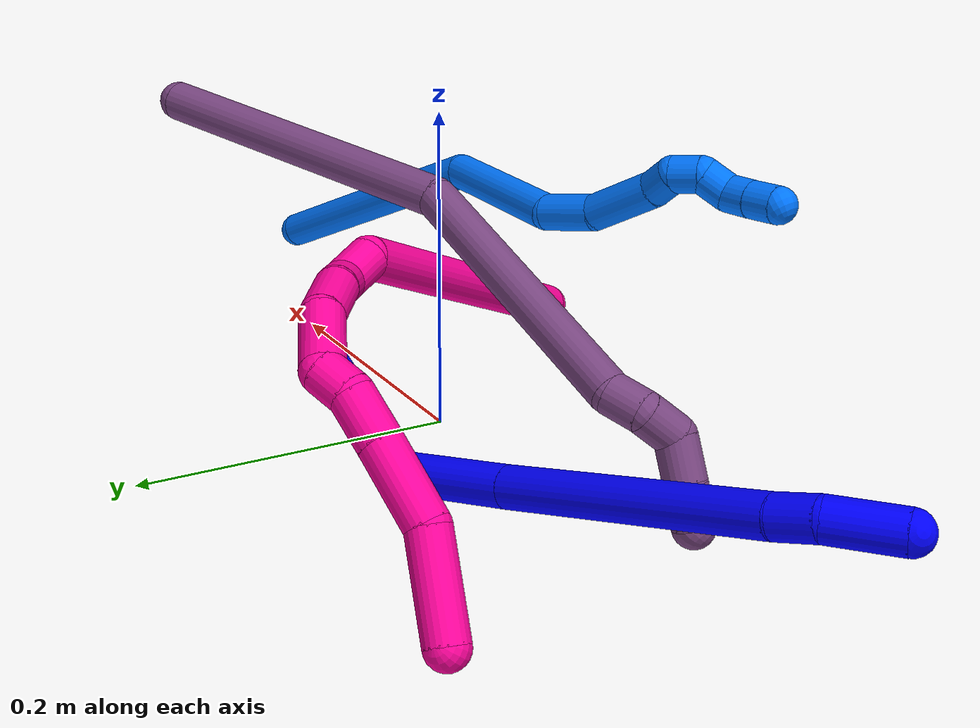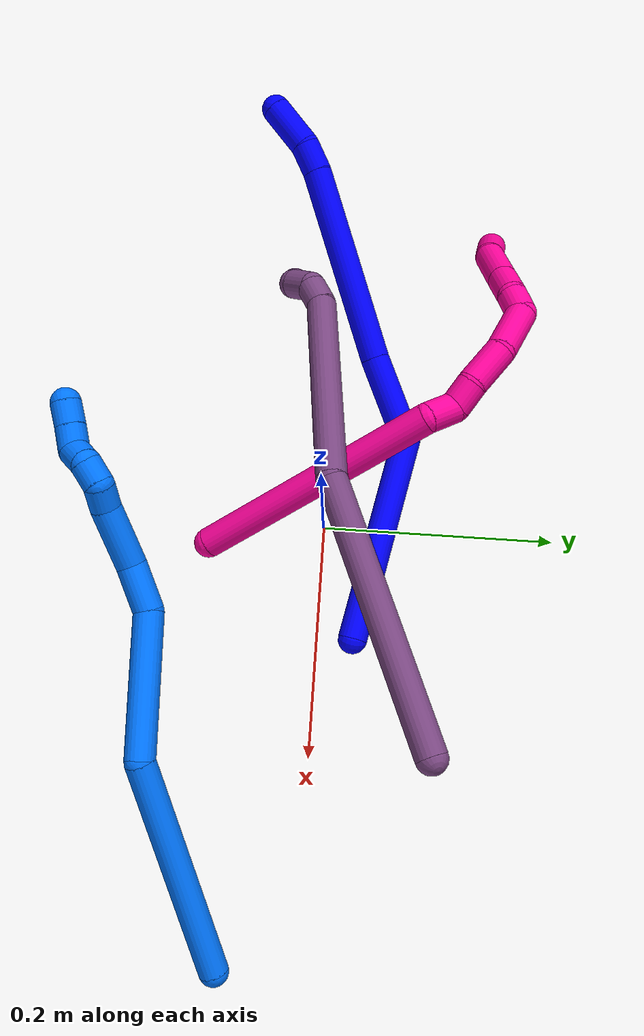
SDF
<sdf version="1.7">
 <world name="default">
  <model name="photoneo_s_sensor">
   <static>1</static>
   <pose>0 0 2 1.57079 1.57079 3.14159</pose>
   <link name="link">
    <inertial><mass>0.1</mass></inertial>
    <sensor name="sensor" type="depth">
     <update_rate>30</update_rate>
     <camera>
      <horizontal_fov>1.22</horizontal_fov>
      <image><width>1920</width><height>1200</height><format>B8G8R8</format></image>
      <clip><near>0.1</near><far>4</far></clip>
      <depth_camera><output>points</output></depth_camera>
     </camera>
     <plugin name="camera_plugin" filename="libgazebo_ros_depth_camera.so">
      <baseline>0.2</baseline>
      <alwaysOn>1</alwaysOn>
      <updateRate>0.0</updateRate>
      <cameraName>camera_ir</cameraName>
      <imageTopicName>/camera/color/image_raw</imageTopicName>
      <cameraInfoTopicName>/camera/color/camera_info</cameraInfoTopicName>
      <depthImageTopicName>/camera/depth/image_raw</depthImageTopicName>
      <depthImageCameraInfoTopicName>/camera/depth/camera_info</depthImageCameraInfoTopicName>
      <pointCloudTopicName>/camera/depth/points</pointCloudTopicName>
      <frameName>fr_optical</frameName>
      <pointCloudCutoff>0.1</pointCloudCutoff>
      <pointCloudCutoffMax>2.0</pointCloudCutoffMax>
      <distortionK1>0</distortionK1>
      <distortionK2>0</distortionK2>
      <distortionK3>0</distortionK3>
      <distortionT1>0</distortionT1>
      <distortionT2>0</distortionT2>
      <CxPrime>0</CxPrime>
      <Cx>0</Cx>
      <Cy>0</Cy>
      <focalLength>0</focalLength>
      <hackBaseline>0</hackBaseline>
     </plugin>
    </sensor>
   </link>
  </model>
  <model name="bin">
   <static>1</static>
   <link name="bottom">
    <collision name="collision-bottom">
     <pose>0 0 -0.01 0 -0 0</pose>
     <geometry><box><size>0.8 0.6 0.02</size></box></geometry>
     <surface>
      <friction><ode><mu>100</mu><mu2>100</mu2></ode></friction>
      <contact><collide_bitmask>65535</collide_bitmask></contact>
     </surface>
    </collision>
   </link>
   <link name="west_wall">
    <collision name="collision-west_wall">
     <pose>-0.41 0 0.1 0 -0 0</pose>
     <geometry><box><size>0.02 0.6 0.2</size></box></geometry>
     <surface>
      <friction><ode><mu>100</mu><mu2>100</mu2></ode></friction>
      <contact><collide_bitmask>65535</collide_bitmask></contact>
     </surface>
    </collision>
   </link>
   <link name="east_wall">
    <collision name="collision-east_wall">
     <pose>0.41 0 0.1 0 -0 0</pose>
     <geometry><box><size>0.02 0.6 0.2</size></box></geometry>
     <surface>
      <friction><ode><mu>100</mu><mu2>100</mu2></ode></friction>
      <contact><collide_bitmask>65535</collide_bitmask></contact>
     </surface>
    </collision>
   </link>
   <link name="south_wall">
    <collision name="collision-south_wall">
     <pose>0 -0.31 0.1 0 -0 0</pose>
     <geometry><box><size>0.8 0.02 0.2</size></box></geometry>
     <surface>
      <friction><ode><mu>100</mu><mu2>100</mu2></ode></friction>
      <contact><collide_bitmask>65535</collide_bitmask></contact>
     </surface>
    </collision>
   </link>
   <link name="north_wall">
    <collision name="collision-north_wall">
     <pose>0 0.31 0.1 0 -0 0</pose>
     <geometry><box><size>0.8 0.02 0.2</size></box></geometry>
     <surface>
      <friction><ode><mu>100</mu><mu2>100</mu2></ode></friction>
      <contact><collide_bitmask>65535</collide_bitmask></contact>
     </surface>
    </collision>
   </link>
  </model>
  <model name="1">
   <static>0</static>
   <link name="1">
    <collision name="collision-cylinder-e_1_1_4">
     <pose>-0.036097 0.025027 0.07997 -0.303299 -0.406751 0.063011</pose>
     <geometry><cylinder><radius>0.0125</radius><length>0.182478</length></cylinder></geometry>
     <surface>
      <friction><ode><mu>1.16</mu><mu2>1.16</mu2><slip1>0</slip1><slip2>0</slip2></ode></friction>
      <contact><ode><kp>1e+06</kp><kd>1</kd><max_vel>0</max_vel><min_depth>0.001</min_depth></ode></contact>
     </surface>
    </collision>
    <visual name="visual-cylinder-e_1_1_4">
     <pose>-0.036097 0.025027 0.07997 -0.303299 -0.406751 0.063011</pose>
     <geometry><cylinder><radius>0.0125</radius><length>0.182478</length></cylinder></geometry>
     <material><ambient>0 0 1 1</ambient></material>
    </visual>
    <collision name="collision-cylinder-e_2_4_5">
     <pose>-0.092935 0.037105 0.189473 0.413216 -0.571596 -0.123023</pose>
     <geometry><cylinder><radius>0.0125</radius><length>0.076683</length></cylinder></geometry>
     <surface>
      <friction><ode><mu>1.16</mu><mu2>1.16</mu2><slip1>0</slip1><slip2>0</slip2></ode></friction>
      <contact><ode><kp>1e+06</kp><kd>1</kd><max_vel>0</max_vel><min_depth>0.001</min_depth></ode></contact>
     </surface>
    </collision>
    <visual name="visual-cylinder-e_2_4_5">
     <pose>-0.092935 0.037105 0.189473 0.413216 -0.571596 -0.123023</pose>
     <geometry><cylinder><radius>0.0125</radius><length>0.076683</length></cylinder></geometry>
     <material><ambient>0 0 1 1</ambient></material>
    </visual>
    <collision name="collision-cylinder-e_3_5_6">
     <pose>-0.155517 -0.002367 0.289319 0.360719 -0.508012 -0.094606</pose>
     <geometry><cylinder><radius>0.0125</radius><length>0.172024</length></cylinder></geometry>
     <surface>
      <friction><ode><mu>1.16</mu><mu2>1.16</mu2><slip1>0</slip1><slip2>0</slip2></ode></friction>
      <contact><ode><kp>1e+06</kp><kd>1</kd><max_vel>0</max_vel><min_depth>0.001</min_depth></ode></contact>
     </surface>
    </collision>
    <visual name="visual-cylinder-e_3_5_6">
     <pose>-0.155517 -0.002367 0.289319 0.360719 -0.508012 -0.094606</pose>
     <geometry><cylinder><radius>0.0125</radius><length>0.172024</length></cylinder></geometry>
     <material><ambient>0 0 1 1</ambient></material>
    </visual>
    <collision name="collision-cylinder-e_4_6_7">
     <pose>-0.204007 -0.034313 0.369371 0.507965 -0.538006 -0.142885</pose>
     <geometry><cylinder><radius>0.0125</radius><length>0.025959</length></cylinder></geometry>
     <surface>
      <friction><ode><mu>1.16</mu><mu2>1.16</mu2><slip1>0</slip1><slip2>0</slip2></ode></friction>
      <contact><ode><kp>1e+06</kp><kd>1</kd><max_vel>0</max_vel><min_depth>0.001</min_depth></ode></contact>
     </surface>
    </collision>
    <visual name="visual-cylinder-e_4_6_7">
     <pose>-0.204007 -0.034313 0.369371 0.507965 -0.538006 -0.142885</pose>
     <geometry><cylinder><radius>0.0125</radius><length>0.025959</length></cylinder></geometry>
     <material><ambient>0 0 1 1</ambient></material>
    </visual>
    <collision name="collision-cylinder-e_5_7_2">
     <pose>-0.22544 -0.050015 0.390727 0.724483 -0.761237 -0.300977</pose>
     <geometry><cylinder><radius>0.0125</radius><length>0.042856</length></cylinder></geometry>
     <surface>
      <friction><ode><mu>1.16</mu><mu2>1.16</mu2><slip1>0</slip1><slip2>0</slip2></ode></friction>
      <contact><ode><kp>1e+06</kp><kd>1</kd><max_vel>0</max_vel><min_depth>0.001</min_depth></ode></contact>
     </surface>
    </collision>
    <visual name="visual-cylinder-e_5_7_2">
     <pose>-0.22544 -0.050015 0.390727 0.724483 -0.761237 -0.300977</pose>
     <geometry><cylinder><radius>0.0125</radius><length>0.042856</length></cylinder></geometry>
     <material><ambient>0 0 1 1</ambient></material>
    </visual>
    <collision name="collision-sphere-2">
     <pose>-0.240221 -0.060297 0.402344 0 -0 0</pose>
     <geometry><sphere><radius>0.0125</radius></sphere></geometry>
     <surface>
      <friction><ode><mu>1.16</mu><mu2>1.16</mu2><slip1>0</slip1><slip2>0</slip2></ode></friction>
      <contact><ode><kp>1e+06</kp><kd>1</kd><max_vel>0</max_vel><min_depth>0.001</min_depth></ode></contact>
     </surface>
    </collision>
    <visual name="visual-sphere-2">
     <pose>-0.240221 -0.060297 0.402344 0 -0 0</pose>
     <geometry><sphere><radius>0.0125</radius></sphere></geometry>
     <material><ambient>0 0 1 1</ambient></material>
    </visual>
    <collision name="collision-sphere-7">
     <pose>-0.210658 -0.039734 0.379109 0 -0 0</pose>
     <geometry><sphere><radius>0.0125</radius></sphere></geometry>
     <surface>
      <friction><ode><mu>1.16</mu><mu2>1.16</mu2><slip1>0</slip1><slip2>0</slip2></ode></friction>
      <contact><ode><kp>1e+06</kp><kd>1</kd><max_vel>0</max_vel><min_depth>0.001</min_depth></ode></contact>
     </surface>
    </collision>
    <visual name="visual-sphere-7">
     <pose>-0.210658 -0.039734 0.379109 0 -0 0</pose>
     <geometry><sphere><radius>0.0125</radius></sphere></geometry>
     <material><ambient>0 0 1 1</ambient></material>
    </visual>
    <collision name="collision-sphere-6">
     <pose>-0.197356 -0.028891 0.359633 0 -0 0</pose>
     <geometry><sphere><radius>0.0125</radius></sphere></geometry>
     <surface>
      <friction><ode><mu>1.16</mu><mu2>1.16</mu2><slip1>0</slip1><slip2>0</slip2></ode></friction>
      <contact><ode><kp>1e+06</kp><kd>1</kd><max_vel>0</max_vel><min_depth>0.001</min_depth></ode></contact>
     </surface>
    </collision>
    <visual name="visual-sphere-6">
     <pose>-0.197356 -0.028891 0.359633 0 -0 0</pose>
     <geometry><sphere><radius>0.0125</radius></sphere></geometry>
     <material><ambient>0 0 1 1</ambient></material>
    </visual>
    <collision name="collision-sphere-5">
     <pose>-0.113677 0.024156 0.219006 0 -0 0</pose>
     <geometry><sphere><radius>0.0125</radius></sphere></geometry>
     <surface>
      <friction><ode><mu>1.16</mu><mu2>1.16</mu2><slip1>0</slip1><slip2>0</slip2></ode></friction>
      <contact><ode><kp>1e+06</kp><kd>1</kd><max_vel>0</max_vel><min_depth>0.001</min_depth></ode></contact>
     </surface>
    </collision>
    <visual name="visual-sphere-5">
     <pose>-0.113677 0.024156 0.219006 0 -0 0</pose>
     <geometry><sphere><radius>0.0125</radius></sphere></geometry>
     <material><ambient>0 0 1 1</ambient></material>
    </visual>
    <collision name="collision-sphere-1">
     <geometry><sphere><radius>0.0125</radius></sphere></geometry>
     <surface>
      <friction><ode><mu>1.16</mu><mu2>1.16</mu2><slip1>0</slip1><slip2>0</slip2></ode></friction>
      <contact><ode><kp>1e+06</kp><kd>1</kd><max_vel>0</max_vel><min_depth>0.001</min_depth></ode></contact>
     </surface>
    </collision>
    <visual name="visual-sphere-1">
     <geometry><sphere><radius>0.0125</radius></sphere></geometry>
     <material><ambient>0 0 1 1</ambient></material>
    </visual>
    <collision name="collision-sphere-4">
     <pose>-0.072193 0.050054 0.159941 0 -0 0</pose>
     <geometry><sphere><radius>0.0125</radius></sphere></geometry>
     <surface>
      <friction><ode><mu>1.16</mu><mu2>1.16</mu2><slip1>0</slip1><slip2>0</slip2></ode></friction>
      <contact><ode><kp>1e+06</kp><kd>1</kd><max_vel>0</max_vel><min_depth>0.001</min_depth></ode></contact>
     </surface>
    </collision>
    <visual name="visual-sphere-4">
     <pose>-0.072193 0.050054 0.159941 0 -0 0</pose>
     <geometry><sphere><radius>0.0125</radius></sphere></geometry>
     <material><ambient>0 0 1 1</ambient></material>
    </visual>
    <inertial>
     <pose>-0.110847 0.007942 0.210451 0 -0 0</pose>
     <mass>0.5</mass>
     <inertia>
      <ixx>0.000856</ixx>
      <ixy>0</ixy>
      <ixz>0</ixz>
      <iyy>0.000932</iyy>
      <iyz>0</iyz>
      <izz>0.000484</izz>
     </inertia>
    </inertial>
   </link>
   <pose>0.097722 0.031216 0.011496 -0.795081 -0.795583 0.758965</pose>
  </model>
  <model name="14">
   <static>0</static>
   <link name="14">
    <collision name="collision-cylinder-e_1_1_4">
     <pose>-0.070727 -0.06043 -0.023683 1.9443 -0.828293 -1.14484</pose>
     <geometry><cylinder><radius>0.0125</radius><length>0.19199</length></cylinder></geometry>
     <surface>
      <friction><ode><mu>1.16</mu><mu2>1.16</mu2><slip1>0</slip1><slip2>0</slip2></ode></friction>
      <contact><ode><kp>1e+06</kp><kd>1</kd><max_vel>0</max_vel><min_depth>0.001</min_depth></ode></contact>
     </surface>
    </collision>
    <visual name="visual-cylinder-e_1_1_4">
     <pose>-0.070727 -0.06043 -0.023683 1.9443 -0.828293 -1.14484</pose>
     <geometry><cylinder><radius>0.0125</radius><length>0.19199</length></cylinder></geometry>
     <material><ambient>0 0.462745 1 1</ambient></material>
    </visual>
    <collision name="collision-cylinder-e_2_4_5">
     <pose>-0.184658 -0.135497 -0.084136 2.76276 -0.829199 -2.31995</pose>
     <geometry><cylinder><radius>0.0125</radius><length>0.117181</length></cylinder></geometry>
     <surface>
      <friction><ode><mu>1.16</mu><mu2>1.16</mu2><slip1>0</slip1><slip2>0</slip2></ode></friction>
      <contact><ode><kp>1e+06</kp><kd>1</kd><max_vel>0</max_vel><min_depth>0.001</min_depth></ode></contact>
     </surface>
    </collision>
    <visual name="visual-cylinder-e_2_4_5">
     <pose>-0.184658 -0.135497 -0.084136 2.76276 -0.829199 -2.31995</pose>
     <geometry><cylinder><radius>0.0125</radius><length>0.117181</length></cylinder></geometry>
     <material><ambient>0 0.462745 1 1</ambient></material>
    </visual>
    <collision name="collision-cylinder-e_3_5_6">
     <pose>-0.239993 -0.162573 -0.130224 2.21376 -0.662752 -1.2048</pose>
     <geometry><cylinder><radius>0.0125</radius><length>0.039433</length></cylinder></geometry>
     <surface>
      <friction><ode><mu>1.16</mu><mu2>1.16</mu2><slip1>0</slip1><slip2>0</slip2></ode></friction>
      <contact><ode><kp>1e+06</kp><kd>1</kd><max_vel>0</max_vel><min_depth>0.001</min_depth></ode></contact>
     </surface>
    </collision>
    <visual name="visual-cylinder-e_3_5_6">
     <pose>-0.239993 -0.162573 -0.130224 2.21376 -0.662752 -1.2048</pose>
     <geometry><cylinder><radius>0.0125</radius><length>0.039433</length></cylinder></geometry>
     <material><ambient>0 0.462745 1 1</ambient></material>
    </visual>
    <collision name="collision-cylinder-e_4_6_7">
     <pose>-0.269817 -0.192707 -0.144099 1.82278 -0.769275 -0.962532</pose>
     <geometry><cylinder><radius>0.0125</radius><length>0.050869</length></cylinder></geometry>
     <surface>
      <friction><ode><mu>1.16</mu><mu2>1.16</mu2><slip1>0</slip1><slip2>0</slip2></ode></friction>
      <contact><ode><kp>1e+06</kp><kd>1</kd><max_vel>0</max_vel><min_depth>0.001</min_depth></ode></contact>
     </surface>
    </collision>
    <visual name="visual-cylinder-e_4_6_7">
     <pose>-0.269817 -0.192707 -0.144099 1.82278 -0.769275 -0.962532</pose>
     <geometry><cylinder><radius>0.0125</radius><length>0.050869</length></cylinder></geometry>
     <material><ambient>0 0.462745 1 1</ambient></material>
    </visual>
    <collision name="collision-cylinder-e_5_7_8">
     <pose>-0.29572 -0.216283 -0.148515 1.54708 -0.949138 -0.929988</pose>
     <geometry><cylinder><radius>0.0125</radius><length>0.020199</length></cylinder></geometry>
     <surface>
      <friction><ode><mu>1.16</mu><mu2>1.16</mu2><slip1>0</slip1><slip2>0</slip2></ode></friction>
      <contact><ode><kp>1e+06</kp><kd>1</kd><max_vel>0</max_vel><min_depth>0.001</min_depth></ode></contact>
     </surface>
    </collision>
    <visual name="visual-cylinder-e_5_7_8">
     <pose>-0.29572 -0.216283 -0.148515 1.54708 -0.949138 -0.929988</pose>
     <geometry><cylinder><radius>0.0125</radius><length>0.020199</length></cylinder></geometry>
     <material><ambient>0 0.462745 1 1</ambient></material>
    </visual>
    <collision name="collision-cylinder-e_6_8_9">
     <pose>-0.308397 -0.229614 -0.153377 2.16202 -0.46191 -0.830838</pose>
     <geometry><cylinder><radius>0.0125</radius><length>0.020049</length></cylinder></geometry>
     <surface>
      <friction><ode><mu>1.16</mu><mu2>1.16</mu2><slip1>0</slip1><slip2>0</slip2></ode></friction>
      <contact><ode><kp>1e+06</kp><kd>1</kd><max_vel>0</max_vel><min_depth>0.001</min_depth></ode></contact>
     </surface>
    </collision>
    <visual name="visual-cylinder-e_6_8_9">
     <pose>-0.308397 -0.229614 -0.153377 2.16202 -0.46191 -0.830838</pose>
     <geometry><cylinder><radius>0.0125</radius><length>0.020049</length></cylinder></geometry>
     <material><ambient>0 0.462745 1 1</ambient></material>
    </visual>
    <collision name="collision-cylinder-e_7_9_10">
     <pose>-0.312018 -0.24208 -0.167134 2.62134 0.083739 0.312245</pose>
     <geometry><cylinder><radius>0.0125</radius><length>0.020251</length></cylinder></geometry>
     <surface>
      <friction><ode><mu>1.16</mu><mu2>1.16</mu2><slip1>0</slip1><slip2>0</slip2></ode></friction>
      <contact><ode><kp>1e+06</kp><kd>1</kd><max_vel>0</max_vel><min_depth>0.001</min_depth></ode></contact>
     </surface>
    </collision>
    <visual name="visual-cylinder-e_7_9_10">
     <pose>-0.312018 -0.24208 -0.167134 2.62134 0.083739 0.312245</pose>
     <geometry><cylinder><radius>0.0125</radius><length>0.020251</length></cylinder></geometry>
     <material><ambient>0 0.462745 1 1</ambient></material>
    </visual>
    <collision name="collision-cylinder-e_8_10_11">
     <pose>-0.317524 -0.251539 -0.182209 2.52886 -0.688197 -1.69522</pose>
     <geometry><cylinder><radius>0.0125</radius><length>0.020004</length></cylinder></geometry>
     <surface>
      <friction><ode><mu>1.16</mu><mu2>1.16</mu2><slip1>0</slip1><slip2>0</slip2></ode></friction>
      <contact><ode><kp>1e+06</kp><kd>1</kd><max_vel>0</max_vel><min_depth>0.001</min_depth></ode></contact>
     </surface>
    </collision>
    <visual name="visual-cylinder-e_8_10_11">
     <pose>-0.317524 -0.251539 -0.182209 2.52886 -0.688197 -1.69522</pose>
     <geometry><cylinder><radius>0.0125</radius><length>0.020004</length></cylinder></geometry>
     <material><ambient>0 0.462745 1 1</ambient></material>
    </visual>
    <collision name="collision-cylinder-e_9_11_2">
     <pose>-0.330143 -0.260778 -0.194692 2.4803 -0.676248 -1.59492</pose>
     <geometry><cylinder><radius>0.0125</radius><length>0.020025</length></cylinder></geometry>
     <surface>
      <friction><ode><mu>1.16</mu><mu2>1.16</mu2><slip1>0</slip1><slip2>0</slip2></ode></friction>
      <contact><ode><kp>1e+06</kp><kd>1</kd><max_vel>0</max_vel><min_depth>0.001</min_depth></ode></contact>
     </surface>
    </collision>
    <visual name="visual-cylinder-e_9_11_2">
     <pose>-0.330143 -0.260778 -0.194692 2.4803 -0.676248 -1.59492</pose>
     <geometry><cylinder><radius>0.0125</radius><length>0.020025</length></cylinder></geometry>
     <material><ambient>0 0.462745 1 1</ambient></material>
    </visual>
    <collision name="collision-sphere-2">
     <pose>-0.33641 -0.265573 -0.200855 0 -0 0</pose>
     <geometry><sphere><radius>0.0125</radius></sphere></geometry>
     <surface>
      <friction><ode><mu>1.16</mu><mu2>1.16</mu2><slip1>0</slip1><slip2>0</slip2></ode></friction>
      <contact><ode><kp>1e+06</kp><kd>1</kd><max_vel>0</max_vel><min_depth>0.001</min_depth></ode></contact>
     </surface>
    </collision>
    <visual name="visual-sphere-2">
     <pose>-0.33641 -0.265573 -0.200855 0 -0 0</pose>
     <geometry><sphere><radius>0.0125</radius></sphere></geometry>
     <material><ambient>0 0.462745 1 1</ambient></material>
    </visual>
    <collision name="collision-sphere-11">
     <pose>-0.323877 -0.255982 -0.188529 0 -0 0</pose>
     <geometry><sphere><radius>0.0125</radius></sphere></geometry>
     <surface>
      <friction><ode><mu>1.16</mu><mu2>1.16</mu2><slip1>0</slip1><slip2>0</slip2></ode></friction>
      <contact><ode><kp>1e+06</kp><kd>1</kd><max_vel>0</max_vel><min_depth>0.001</min_depth></ode></contact>
     </surface>
    </collision>
    <visual name="visual-sphere-11">
     <pose>-0.323877 -0.255982 -0.188529 0 -0 0</pose>
     <geometry><sphere><radius>0.0125</radius></sphere></geometry>
     <material><ambient>0 0.462745 1 1</ambient></material>
    </visual>
    <collision name="collision-sphere-10">
     <pose>-0.311171 -0.247096 -0.175889 0 -0 0</pose>
     <geometry><sphere><radius>0.0125</radius></sphere></geometry>
     <surface>
      <friction><ode><mu>1.16</mu><mu2>1.16</mu2><slip1>0</slip1><slip2>0</slip2></ode></friction>
      <contact><ode><kp>1e+06</kp><kd>1</kd><max_vel>0</max_vel><min_depth>0.001</min_depth></ode></contact>
     </surface>
    </collision>
    <visual name="visual-sphere-10">
     <pose>-0.311171 -0.247096 -0.175889 0 -0 0</pose>
     <geometry><sphere><radius>0.0125</radius></sphere></geometry>
     <material><ambient>0 0.462745 1 1</ambient></material>
    </visual>
    <collision name="collision-sphere-9">
     <pose>-0.312865 -0.237064 -0.158379 0 -0 0</pose>
     <geometry><sphere><radius>0.0125</radius></sphere></geometry>
     <surface>
      <friction><ode><mu>1.16</mu><mu2>1.16</mu2><slip1>0</slip1><slip2>0</slip2></ode></friction>
      <contact><ode><kp>1e+06</kp><kd>1</kd><max_vel>0</max_vel><min_depth>0.001</min_depth></ode></contact>
     </surface>
    </collision>
    <visual name="visual-sphere-9">
     <pose>-0.312865 -0.237064 -0.158379 0 -0 0</pose>
     <geometry><sphere><radius>0.0125</radius></sphere></geometry>
     <material><ambient>0 0.462745 1 1</ambient></material>
    </visual>
    <collision name="collision-sphere-4">
     <pose>-0.141454 -0.120861 -0.047366 0 -0 0</pose>
     <geometry><sphere><radius>0.0125</radius></sphere></geometry>
     <surface>
      <friction><ode><mu>1.16</mu><mu2>1.16</mu2><slip1>0</slip1><slip2>0</slip2></ode></friction>
      <contact><ode><kp>1e+06</kp><kd>1</kd><max_vel>0</max_vel><min_depth>0.001</min_depth></ode></contact>
     </surface>
    </collision>
    <visual name="visual-sphere-4">
     <pose>-0.141454 -0.120861 -0.047366 0 -0 0</pose>
     <geometry><sphere><radius>0.0125</radius></sphere></geometry>
     <material><ambient>0 0.462745 1 1</ambient></material>
    </visual>
    <collision name="collision-sphere-1">
     <geometry><sphere><radius>0.0125</radius></sphere></geometry>
     <surface>
      <friction><ode><mu>1.16</mu><mu2>1.16</mu2><slip1>0</slip1><slip2>0</slip2></ode></friction>
      <contact><ode><kp>1e+06</kp><kd>1</kd><max_vel>0</max_vel><min_depth>0.001</min_depth></ode></contact>
     </surface>
    </collision>
    <visual name="visual-sphere-1">
     <geometry><sphere><radius>0.0125</radius></sphere></geometry>
     <material><ambient>0 0.462745 1 1</ambient></material>
    </visual>
    <collision name="collision-sphere-8">
     <pose>-0.30393 -0.222163 -0.148375 0 -0 0</pose>
     <geometry><sphere><radius>0.0125</radius></sphere></geometry>
     <surface>
      <friction><ode><mu>1.16</mu><mu2>1.16</mu2><slip1>0</slip1><slip2>0</slip2></ode></friction>
      <contact><ode><kp>1e+06</kp><kd>1</kd><max_vel>0</max_vel><min_depth>0.001</min_depth></ode></contact>
     </surface>
    </collision>
    <visual name="visual-sphere-8">
     <pose>-0.30393 -0.222163 -0.148375 0 -0 0</pose>
     <geometry><sphere><radius>0.0125</radius></sphere></geometry>
     <material><ambient>0 0.462745 1 1</ambient></material>
    </visual>
    <collision name="collision-sphere-5">
     <pose>-0.227862 -0.150134 -0.120905 0 -0 0</pose>
     <geometry><sphere><radius>0.0125</radius></sphere></geometry>
     <surface>
      <friction><ode><mu>1.16</mu><mu2>1.16</mu2><slip1>0</slip1><slip2>0</slip2></ode></friction>
      <contact><ode><kp>1e+06</kp><kd>1</kd><max_vel>0</max_vel><min_depth>0.001</min_depth></ode></contact>
     </surface>
    </collision>
    <visual name="visual-sphere-5">
     <pose>-0.227862 -0.150134 -0.120905 0 -0 0</pose>
     <geometry><sphere><radius>0.0125</radius></sphere></geometry>
     <material><ambient>0 0.462745 1 1</ambient></material>
    </visual>
    <collision name="collision-sphere-6">
     <pose>-0.252124 -0.175012 -0.139543 0 -0 0</pose>
     <geometry><sphere><radius>0.0125</radius></sphere></geometry>
     <surface>
      <friction><ode><mu>1.16</mu><mu2>1.16</mu2><slip1>0</slip1><slip2>0</slip2></ode></friction>
      <contact><ode><kp>1e+06</kp><kd>1</kd><max_vel>0</max_vel><min_depth>0.001</min_depth></ode></contact>
     </surface>
    </collision>
    <visual name="visual-sphere-6">
     <pose>-0.252124 -0.175012 -0.139543 0 -0 0</pose>
     <geometry><sphere><radius>0.0125</radius></sphere></geometry>
     <material><ambient>0 0.462745 1 1</ambient></material>
    </visual>
    <collision name="collision-sphere-7">
     <pose>-0.287509 -0.210403 -0.148654 0 -0 0</pose>
     <geometry><sphere><radius>0.0125</radius></sphere></geometry>
     <surface>
      <friction><ode><mu>1.16</mu><mu2>1.16</mu2><slip1>0</slip1><slip2>0</slip2></ode></friction>
      <contact><ode><kp>1e+06</kp><kd>1</kd><max_vel>0</max_vel><min_depth>0.001</min_depth></ode></contact>
     </surface>
    </collision>
    <visual name="visual-sphere-7">
     <pose>-0.287509 -0.210403 -0.148654 0 -0 0</pose>
     <geometry><sphere><radius>0.0125</radius></sphere></geometry>
     <material><ambient>0 0.462745 1 1</ambient></material>
    </visual>
    <inertial>
     <pose>-0.179688 -0.135643 -0.087749 0 -0 0</pose>
     <mass>0.5</mass>
     <inertia>
      <ixx>-0.000366</ixx>
      <ixy>0</ixy>
      <ixz>0</ixz>
      <iyy>-6.7e-05</iyy>
      <iyz>0</iyz>
      <izz>0.000971</izz>
     </inertia>
    </inertial>
   </link>
   <pose>0.374298 -0.063993 0.012559 -0.417809 0.566708 -0.466829</pose>
  </model>
  <model name="18">
   <static>0</static>
   <link name="18">
    <collision name="collision-cylinder-e_1_1_4">
     <pose>-0.023267 0.016403 0.10286 -0.158134 -0.219772 0.017483</pose>
     <geometry><cylinder><radius>0.0125</radius><length>0.213453</length></cylinder></geometry>
     <surface>
      <friction><ode><mu>1.16</mu><mu2>1.16</mu2><slip1>0</slip1><slip2>0</slip2></ode></friction>
      <contact><ode><kp>1e+06</kp><kd>1</kd><max_vel>0</max_vel><min_depth>0.001</min_depth></ode></contact>
     </surface>
    </collision>
    <visual name="visual-cylinder-e_1_1_4">
     <pose>-0.023267 0.016403 0.10286 -0.158134 -0.219772 0.017483</pose>
     <geometry><cylinder><radius>0.0125</radius><length>0.213453</length></cylinder></geometry>
     <material><ambient>1 0.007843 0.615686 1</ambient></material>
    </visual>
    <collision name="collision-cylinder-e_2_4_5">
     <pose>-0.052703 0.04131 0.213332 -0.840721 -0.49546 0.225162</pose>
     <geometry><cylinder><radius>0.0125</radius><length>0.02595</length></cylinder></geometry>
     <surface>
      <friction><ode><mu>1.16</mu><mu2>1.16</mu2><slip1>0</slip1><slip2>0</slip2></ode></friction>
      <contact><ode><kp>1e+06</kp><kd>1</kd><max_vel>0</max_vel><min_depth>0.001</min_depth></ode></contact>
     </surface>
    </collision>
    <visual name="visual-cylinder-e_2_4_5">
     <pose>-0.052703 0.04131 0.213332 -0.840721 -0.49546 0.225162</pose>
     <geometry><cylinder><radius>0.0125</radius><length>0.02595</length></cylinder></geometry>
     <material><ambient>1 0.007843 0.615686 1</ambient></material>
    </visual>
    <collision name="collision-cylinder-e_3_5_6">
     <pose>-0.066574 0.050504 0.229542 -0.079867 -0.728963 0.030485</pose>
     <geometry><cylinder><radius>0.0125</radius><length>0.023127</length></cylinder></geometry>
     <surface>
      <friction><ode><mu>1.16</mu><mu2>1.16</mu2><slip1>0</slip1><slip2>0</slip2></ode></friction>
      <contact><ode><kp>1e+06</kp><kd>1</kd><max_vel>0</max_vel><min_depth>0.001</min_depth></ode></contact>
     </surface>
    </collision>
    <visual name="visual-cylinder-e_3_5_6">
     <pose>-0.066574 0.050504 0.229542 -0.079867 -0.728963 0.030485</pose>
     <geometry><cylinder><radius>0.0125</radius><length>0.023127</length></cylinder></geometry>
     <material><ambient>1 0.007843 0.615686 1</ambient></material>
    </visual>
    <collision name="collision-cylinder-e_4_6_7">
     <pose>-0.087761 0.056432 0.249323 -0.438184 -0.829294 0.195397</pose>
     <geometry><cylinder><radius>0.0125</radius><length>0.036571</length></cylinder></geometry>
     <surface>
      <friction><ode><mu>1.16</mu><mu2>1.16</mu2><slip1>0</slip1><slip2>0</slip2></ode></friction>
      <contact><ode><kp>1e+06</kp><kd>1</kd><max_vel>0</max_vel><min_depth>0.001</min_depth></ode></contact>
     </surface>
    </collision>
    <visual name="visual-cylinder-e_4_6_7">
     <pose>-0.087761 0.056432 0.249323 -0.438184 -0.829294 0.195397</pose>
     <geometry><cylinder><radius>0.0125</radius><length>0.036571</length></cylinder></geometry>
     <material><ambient>1 0.007843 0.615686 1</ambient></material>
    </visual>
    <collision name="collision-cylinder-e_5_7_8">
     <pose>-0.120728 0.068879 0.267626 -0.791471 -1.09129 0.496809</pose>
     <geometry><cylinder><radius>0.0125</radius><length>0.043917</length></cylinder></geometry>
     <surface>
      <friction><ode><mu>1.16</mu><mu2>1.16</mu2><slip1>0</slip1><slip2>0</slip2></ode></friction>
      <contact><ode><kp>1e+06</kp><kd>1</kd><max_vel>0</max_vel><min_depth>0.001</min_depth></ode></contact>
     </surface>
    </collision>
    <visual name="visual-cylinder-e_5_7_8">
     <pose>-0.120728 0.068879 0.267626 -0.791471 -1.09129 0.496809</pose>
     <geometry><cylinder><radius>0.0125</radius><length>0.043917</length></cylinder></geometry>
     <material><ambient>1 0.007843 0.615686 1</ambient></material>
    </visual>
    <collision name="collision-cylinder-e_6_8_9">
     <pose>-0.150211 0.074603 0.272306 2.59552 -1.29275 -2.43081</pose>
     <geometry><cylinder><radius>0.0125</radius><length>0.0208</length></cylinder></geometry>
     <surface>
      <friction><ode><mu>1.16</mu><mu2>1.16</mu2><slip1>0</slip1><slip2>0</slip2></ode></friction>
      <contact><ode><kp>1e+06</kp><kd>1</kd><max_vel>0</max_vel><min_depth>0.001</min_depth></ode></contact>
     </surface>
    </collision>
    <visual name="visual-cylinder-e_6_8_9">
     <pose>-0.150211 0.074603 0.272306 2.59552 -1.29275 -2.43081</pose>
     <geometry><cylinder><radius>0.0125</radius><length>0.0208</length></cylinder></geometry>
     <material><ambient>1 0.007843 0.615686 1</ambient></material>
    </visual>
    <collision name="collision-cylinder-e_7_9_10">
     <pose>-0.173718 0.076262 0.264645 -2.60001 -1.14699 2.32973</pose>
     <geometry><cylinder><radius>0.0125</radius><length>0.029636</length></cylinder></geometry>
     <surface>
      <friction><ode><mu>1.16</mu><mu2>1.16</mu2><slip1>0</slip1><slip2>0</slip2></ode></friction>
      <contact><ode><kp>1e+06</kp><kd>1</kd><max_vel>0</max_vel><min_depth>0.001</min_depth></ode></contact>
     </surface>
    </collision>
    <visual name="visual-cylinder-e_7_9_10">
     <pose>-0.173718 0.076262 0.264645 -2.60001 -1.14699 2.32973</pose>
     <geometry><cylinder><radius>0.0125</radius><length>0.029636</length></cylinder></geometry>
     <material><ambient>1 0.007843 0.615686 1</ambient></material>
    </visual>
    <collision name="collision-cylinder-e_8_10_11">
     <pose>-0.208871 0.08491 0.251086 -2.55781 -1.13831 2.26343</pose>
     <geometry><cylinder><radius>0.0125</radius><length>0.047682</length></cylinder></geometry>
     <surface>
      <friction><ode><mu>1.16</mu><mu2>1.16</mu2><slip1>0</slip1><slip2>0</slip2></ode></friction>
      <contact><ode><kp>1e+06</kp><kd>1</kd><max_vel>0</max_vel><min_depth>0.001</min_depth></ode></contact>
     </surface>
    </collision>
    <visual name="visual-cylinder-e_8_10_11">
     <pose>-0.208871 0.08491 0.251086 -2.55781 -1.13831 2.26343</pose>
     <geometry><cylinder><radius>0.0125</radius><length>0.047682</length></cylinder></geometry>
     <material><ambient>1 0.007843 0.615686 1</ambient></material>
    </visual>
    <collision name="collision-cylinder-e_9_11_2">
     <pose>-0.253098 0.107257 0.234216 -2.0398 -0.874503 1.30083</pose>
     <geometry><cylinder><radius>0.0125</radius><length>0.058865</length></cylinder></geometry>
     <surface>
      <friction><ode><mu>1.16</mu><mu2>1.16</mu2><slip1>0</slip1><slip2>0</slip2></ode></friction>
      <contact><ode><kp>1e+06</kp><kd>1</kd><max_vel>0</max_vel><min_depth>0.001</min_depth></ode></contact>
     </surface>
    </collision>
    <visual name="visual-cylinder-e_9_11_2">
     <pose>-0.253098 0.107257 0.234216 -2.0398 -0.874503 1.30083</pose>
     <geometry><cylinder><radius>0.0125</radius><length>0.058865</length></cylinder></geometry>
     <material><ambient>1 0.007843 0.615686 1</ambient></material>
    </visual>
    <collision name="collision-sphere-2">
     <pose>-0.275679 0.124096 0.225684 0 -0 0</pose>
     <geometry><sphere><radius>0.0125</radius></sphere></geometry>
     <surface>
      <friction><ode><mu>1.16</mu><mu2>1.16</mu2><slip1>0</slip1><slip2>0</slip2></ode></friction>
      <contact><ode><kp>1e+06</kp><kd>1</kd><max_vel>0</max_vel><min_depth>0.001</min_depth></ode></contact>
     </surface>
    </collision>
    <visual name="visual-sphere-2">
     <pose>-0.275679 0.124096 0.225684 0 -0 0</pose>
     <geometry><sphere><radius>0.0125</radius></sphere></geometry>
     <material><ambient>1 0.007843 0.615686 1</ambient></material>
    </visual>
    <collision name="collision-sphere-11">
     <pose>-0.230516 0.090418 0.242749 0 -0 0</pose>
     <geometry><sphere><radius>0.0125</radius></sphere></geometry>
     <surface>
      <friction><ode><mu>1.16</mu><mu2>1.16</mu2><slip1>0</slip1><slip2>0</slip2></ode></friction>
      <contact><ode><kp>1e+06</kp><kd>1</kd><max_vel>0</max_vel><min_depth>0.001</min_depth></ode></contact>
     </surface>
    </collision>
    <visual name="visual-sphere-11">
     <pose>-0.230516 0.090418 0.242749 0 -0 0</pose>
     <geometry><sphere><radius>0.0125</radius></sphere></geometry>
     <material><ambient>1 0.007843 0.615686 1</ambient></material>
    </visual>
    <collision name="collision-sphere-10">
     <pose>-0.187225 0.079403 0.259424 0 -0 0</pose>
     <geometry><sphere><radius>0.0125</radius></sphere></geometry>
     <surface>
      <friction><ode><mu>1.16</mu><mu2>1.16</mu2><slip1>0</slip1><slip2>0</slip2></ode></friction>
      <contact><ode><kp>1e+06</kp><kd>1</kd><max_vel>0</max_vel><min_depth>0.001</min_depth></ode></contact>
     </surface>
    </collision>
    <visual name="visual-sphere-10">
     <pose>-0.187225 0.079403 0.259424 0 -0 0</pose>
     <geometry><sphere><radius>0.0125</radius></sphere></geometry>
     <material><ambient>1 0.007843 0.615686 1</ambient></material>
    </visual>
    <collision name="collision-sphere-9">
     <pose>-0.160211 0.07312 0.269867 0 -0 0</pose>
     <geometry><sphere><radius>0.0125</radius></sphere></geometry>
     <surface>
      <friction><ode><mu>1.16</mu><mu2>1.16</mu2><slip1>0</slip1><slip2>0</slip2></ode></friction>
      <contact><ode><kp>1e+06</kp><kd>1</kd><max_vel>0</max_vel><min_depth>0.001</min_depth></ode></contact>
     </surface>
    </collision>
    <visual name="visual-sphere-9">
     <pose>-0.160211 0.07312 0.269867 0 -0 0</pose>
     <geometry><sphere><radius>0.0125</radius></sphere></geometry>
     <material><ambient>1 0.007843 0.615686 1</ambient></material>
    </visual>
    <collision name="collision-sphere-4">
     <pose>-0.046534 0.032805 0.205719 0 -0 0</pose>
     <geometry><sphere><radius>0.0125</radius></sphere></geometry>
     <surface>
      <friction><ode><mu>1.16</mu><mu2>1.16</mu2><slip1>0</slip1><slip2>0</slip2></ode></friction>
      <contact><ode><kp>1e+06</kp><kd>1</kd><max_vel>0</max_vel><min_depth>0.001</min_depth></ode></contact>
     </surface>
    </collision>
    <visual name="visual-sphere-4">
     <pose>-0.046534 0.032805 0.205719 0 -0 0</pose>
     <geometry><sphere><radius>0.0125</radius></sphere></geometry>
     <material><ambient>1 0.007843 0.615686 1</ambient></material>
    </visual>
    <collision name="collision-sphere-1">
     <geometry><sphere><radius>0.0125</radius></sphere></geometry>
     <surface>
      <friction><ode><mu>1.16</mu><mu2>1.16</mu2><slip1>0</slip1><slip2>0</slip2></ode></friction>
      <contact><ode><kp>1e+06</kp><kd>1</kd><max_vel>0</max_vel><min_depth>0.001</min_depth></ode></contact>
     </surface>
    </collision>
    <visual name="visual-sphere-1">
     <geometry><sphere><radius>0.0125</radius></sphere></geometry>
     <material><ambient>1 0.007843 0.615686 1</ambient></material>
    </visual>
    <collision name="collision-sphere-8">
     <pose>-0.14021 0.076085 0.274746 0 -0 0</pose>
     <geometry><sphere><radius>0.0125</radius></sphere></geometry>
     <surface>
      <friction><ode><mu>1.16</mu><mu2>1.16</mu2><slip1>0</slip1><slip2>0</slip2></ode></friction>
      <contact><ode><kp>1e+06</kp><kd>1</kd><max_vel>0</max_vel><min_depth>0.001</min_depth></ode></contact>
     </surface>
    </collision>
    <visual name="visual-sphere-8">
     <pose>-0.14021 0.076085 0.274746 0 -0 0</pose>
     <geometry><sphere><radius>0.0125</radius></sphere></geometry>
     <material><ambient>1 0.007843 0.615686 1</ambient></material>
    </visual>
    <collision name="collision-sphere-5">
     <pose>-0.058871 0.049816 0.220945 0 -0 0</pose>
     <geometry><sphere><radius>0.0125</radius></sphere></geometry>
     <surface>
      <friction><ode><mu>1.16</mu><mu2>1.16</mu2><slip1>0</slip1><slip2>0</slip2></ode></friction>
      <contact><ode><kp>1e+06</kp><kd>1</kd><max_vel>0</max_vel><min_depth>0.001</min_depth></ode></contact>
     </surface>
    </collision>
    <visual name="visual-sphere-5">
     <pose>-0.058871 0.049816 0.220945 0 -0 0</pose>
     <geometry><sphere><radius>0.0125</radius></sphere></geometry>
     <material><ambient>1 0.007843 0.615686 1</ambient></material>
    </visual>
    <collision name="collision-sphere-6">
     <pose>-0.074277 0.051192 0.23814 0 -0 0</pose>
     <geometry><sphere><radius>0.0125</radius></sphere></geometry>
     <surface>
      <friction><ode><mu>1.16</mu><mu2>1.16</mu2><slip1>0</slip1><slip2>0</slip2></ode></friction>
      <contact><ode><kp>1e+06</kp><kd>1</kd><max_vel>0</max_vel><min_depth>0.001</min_depth></ode></contact>
     </surface>
    </collision>
    <visual name="visual-sphere-6">
     <pose>-0.074277 0.051192 0.23814 0 -0 0</pose>
     <geometry><sphere><radius>0.0125</radius></sphere></geometry>
     <material><ambient>1 0.007843 0.615686 1</ambient></material>
    </visual>
    <collision name="collision-sphere-7">
     <pose>-0.101246 0.061672 0.260506 0 -0 0</pose>
     <geometry><sphere><radius>0.0125</radius></sphere></geometry>
     <surface>
      <friction><ode><mu>1.16</mu><mu2>1.16</mu2><slip1>0</slip1><slip2>0</slip2></ode></friction>
      <contact><ode><kp>1e+06</kp><kd>1</kd><max_vel>0</max_vel><min_depth>0.001</min_depth></ode></contact>
     </surface>
    </collision>
    <visual name="visual-sphere-7">
     <pose>-0.101246 0.061672 0.260506 0 -0 0</pose>
     <geometry><sphere><radius>0.0125</radius></sphere></geometry>
     <material><ambient>1 0.007843 0.615686 1</ambient></material>
    </visual>
    <inertial>
     <pose>-0.099032 0.050008 0.185876 0 -0 0</pose>
     <mass>0.5</mass>
     <inertia>
      <ixx>0.000821</ixx>
      <ixy>0</ixy>
      <ixz>0</ixz>
      <iyy>0.000894</iyy>
      <iyz>0</iyz>
      <izz>9.4e-05</izz>
     </inertia>
    </inertial>
   </link>
   <pose>0.02937 -0.093385 0.053901 -0.869535 -0.331738 0.084362</pose>
  </model>
  <model name="20">
   <static>0</static>
   <link name="20">
    <collision name="collision-cylinder-e_1_1_4">
     <pose>-0.033293 -0.045524 -0.096435 2.70054 -0.302606 -1.19453</pose>
     <geometry><cylinder><radius>0.0125</radius><length>0.223433</length></cylinder></geometry>
     <surface>
      <friction><ode><mu>1.16</mu><mu2>1.16</mu2><slip1>0</slip1><slip2>0</slip2></ode></friction>
      <contact><ode><kp>1e+06</kp><kd>1</kd><max_vel>0</max_vel><min_depth>0.001</min_depth></ode></contact>
     </surface>
    </collision>
    <visual name="visual-cylinder-e_1_1_4">
     <pose>-0.033293 -0.045524 -0.096435 2.70054 -0.302606 -1.19453</pose>
     <geometry><cylinder><radius>0.0125</radius><length>0.223433</length></cylinder></geometry>
     <material><ambient>0.478431 0.278431 0.509804 1</ambient></material>
    </visual>
    <collision name="collision-cylinder-e_2_4_5">
     <pose>-0.101753 -0.094586 -0.276448 3.0993 -0.39797 -2.93258</pose>
     <geometry><cylinder><radius>0.0125</radius><length>0.181488</length></cylinder></geometry>
     <surface>
      <friction><ode><mu>1.16</mu><mu2>1.16</mu2><slip1>0</slip1><slip2>0</slip2></ode></friction>
      <contact><ode><kp>1e+06</kp><kd>1</kd><max_vel>0</max_vel><min_depth>0.001</min_depth></ode></contact>
     </surface>
    </collision>
    <visual name="visual-cylinder-e_2_4_5">
     <pose>-0.101753 -0.094586 -0.276448 3.0993 -0.39797 -2.93258</pose>
     <geometry><cylinder><radius>0.0125</radius><length>0.181488</length></cylinder></geometry>
     <material><ambient>0.478431 0.278431 0.509804 1</ambient></material>
    </visual>
    <collision name="collision-cylinder-e_3_5_6">
     <pose>-0.138238 -0.101346 -0.370391 2.84014 -0.120806 -0.757895</pose>
     <geometry><cylinder><radius>0.0125</radius><length>0.02187</length></cylinder></geometry>
     <surface>
      <friction><ode><mu>1.16</mu><mu2>1.16</mu2><slip1>0</slip1><slip2>0</slip2></ode></friction>
      <contact><ode><kp>1e+06</kp><kd>1</kd><max_vel>0</max_vel><min_depth>0.001</min_depth></ode></contact>
     </surface>
    </collision>
    <visual name="visual-cylinder-e_3_5_6">
     <pose>-0.138238 -0.101346 -0.370391 2.84014 -0.120806 -0.757895</pose>
     <geometry><cylinder><radius>0.0125</radius><length>0.02187</length></cylinder></geometry>
     <material><ambient>0.478431 0.278431 0.509804 1</ambient></material>
    </visual>
    <collision name="collision-cylinder-e_4_6_7">
     <pose>-0.134059 -0.105341 -0.390597 3.06333 0.508157 2.84231</pose>
     <geometry><cylinder><radius>0.0125</radius><length>0.022595</length></cylinder></geometry>
     <surface>
      <friction><ode><mu>1.16</mu><mu2>1.16</mu2><slip1>0</slip1><slip2>0</slip2></ode></friction>
      <contact><ode><kp>1e+06</kp><kd>1</kd><max_vel>0</max_vel><min_depth>0.001</min_depth></ode></contact>
     </surface>
    </collision>
    <visual name="visual-cylinder-e_4_6_7">
     <pose>-0.134059 -0.105341 -0.390597 3.06333 0.508157 2.84231</pose>
     <geometry><cylinder><radius>0.0125</radius><length>0.022595</length></cylinder></geometry>
     <material><ambient>0.478431 0.278431 0.509804 1</ambient></material>
    </visual>
    <collision name="collision-cylinder-e_5_7_8">
     <pose>-0.127939 -0.099005 -0.411437 -2.56794 0.047545 -0.160876</pose>
     <geometry><cylinder><radius>0.0125</radius><length>0.026223</length></cylinder></geometry>
     <surface>
      <friction><ode><mu>1.16</mu><mu2>1.16</mu2><slip1>0</slip1><slip2>0</slip2></ode></friction>
      <contact><ode><kp>1e+06</kp><kd>1</kd><max_vel>0</max_vel><min_depth>0.001</min_depth></ode></contact>
     </surface>
    </collision>
    <visual name="visual-cylinder-e_5_7_8">
     <pose>-0.127939 -0.099005 -0.411437 -2.56794 0.047545 -0.160876</pose>
     <geometry><cylinder><radius>0.0125</radius><length>0.026223</length></cylinder></geometry>
     <material><ambient>0.478431 0.278431 0.509804 1</ambient></material>
    </visual>
    <collision name="collision-cylinder-e_6_8_2">
     <pose>-0.125222 -0.084867 -0.432179 -2.51646 0.172555 -0.523032</pose>
     <geometry><cylinder><radius>0.0125</radius><length>0.024391</length></cylinder></geometry>
     <surface>
      <friction><ode><mu>1.16</mu><mu2>1.16</mu2><slip1>0</slip1><slip2>0</slip2></ode></friction>
      <contact><ode><kp>1e+06</kp><kd>1</kd><max_vel>0</max_vel><min_depth>0.001</min_depth></ode></contact>
     </surface>
    </collision>
    <visual name="visual-cylinder-e_6_8_2">
     <pose>-0.125222 -0.084867 -0.432179 -2.51646 0.172555 -0.523032</pose>
     <geometry><cylinder><radius>0.0125</radius><length>0.024391</length></cylinder></geometry>
     <material><ambient>0.478431 0.278431 0.509804 1</ambient></material>
    </visual>
    <collision name="collision-sphere-2">
     <pose>-0.123128 -0.077836 -0.441921 0 -0 0</pose>
     <geometry><sphere><radius>0.0125</radius></sphere></geometry>
     <surface>
      <friction><ode><mu>1.16</mu><mu2>1.16</mu2><slip1>0</slip1><slip2>0</slip2></ode></friction>
      <contact><ode><kp>1e+06</kp><kd>1</kd><max_vel>0</max_vel><min_depth>0.001</min_depth></ode></contact>
     </surface>
    </collision>
    <visual name="visual-sphere-2">
     <pose>-0.123128 -0.077836 -0.441921 0 -0 0</pose>
     <geometry><sphere><radius>0.0125</radius></sphere></geometry>
     <material><ambient>0.478431 0.278431 0.509804 1</ambient></material>
    </visual>
    <collision name="collision-sphere-4">
     <pose>-0.066585 -0.091049 -0.19287 0 -0 0</pose>
     <geometry><sphere><radius>0.0125</radius></sphere></geometry>
     <surface>
      <friction><ode><mu>1.16</mu><mu2>1.16</mu2><slip1>0</slip1><slip2>0</slip2></ode></friction>
      <contact><ode><kp>1e+06</kp><kd>1</kd><max_vel>0</max_vel><min_depth>0.001</min_depth></ode></contact>
     </surface>
    </collision>
    <visual name="visual-sphere-4">
     <pose>-0.066585 -0.091049 -0.19287 0 -0 0</pose>
     <geometry><sphere><radius>0.0125</radius></sphere></geometry>
     <material><ambient>0.478431 0.278431 0.509804 1</ambient></material>
    </visual>
    <collision name="collision-sphere-1">
     <geometry><sphere><radius>0.0125</radius></sphere></geometry>
     <surface>
      <friction><ode><mu>1.16</mu><mu2>1.16</mu2><slip1>0</slip1><slip2>0</slip2></ode></friction>
      <contact><ode><kp>1e+06</kp><kd>1</kd><max_vel>0</max_vel><min_depth>0.001</min_depth></ode></contact>
     </surface>
    </collision>
    <visual name="visual-sphere-1">
     <geometry><sphere><radius>0.0125</radius></sphere></geometry>
     <material><ambient>0.478431 0.278431 0.509804 1</ambient></material>
    </visual>
    <collision name="collision-sphere-8">
     <pose>-0.127315 -0.091897 -0.422437 0 -0 0</pose>
     <geometry><sphere><radius>0.0125</radius></sphere></geometry>
     <surface>
      <friction><ode><mu>1.16</mu><mu2>1.16</mu2><slip1>0</slip1><slip2>0</slip2></ode></friction>
      <contact><ode><kp>1e+06</kp><kd>1</kd><max_vel>0</max_vel><min_depth>0.001</min_depth></ode></contact>
     </surface>
    </collision>
    <visual name="visual-sphere-8">
     <pose>-0.127315 -0.091897 -0.422437 0 -0 0</pose>
     <geometry><sphere><radius>0.0125</radius></sphere></geometry>
     <material><ambient>0.478431 0.278431 0.509804 1</ambient></material>
    </visual>
    <collision name="collision-sphere-5">
     <pose>-0.13692 -0.098123 -0.360025 0 -0 0</pose>
     <geometry><sphere><radius>0.0125</radius></sphere></geometry>
     <surface>
      <friction><ode><mu>1.16</mu><mu2>1.16</mu2><slip1>0</slip1><slip2>0</slip2></ode></friction>
      <contact><ode><kp>1e+06</kp><kd>1</kd><max_vel>0</max_vel><min_depth>0.001</min_depth></ode></contact>
     </surface>
    </collision>
    <visual name="visual-sphere-5">
     <pose>-0.13692 -0.098123 -0.360025 0 -0 0</pose>
     <geometry><sphere><radius>0.0125</radius></sphere></geometry>
     <material><ambient>0.478431 0.278431 0.509804 1</ambient></material>
    </visual>
    <collision name="collision-sphere-6">
     <pose>-0.139556 -0.104569 -0.380757 0 -0 0</pose>
     <geometry><sphere><radius>0.0125</radius></sphere></geometry>
     <surface>
      <friction><ode><mu>1.16</mu><mu2>1.16</mu2><slip1>0</slip1><slip2>0</slip2></ode></friction>
      <contact><ode><kp>1e+06</kp><kd>1</kd><max_vel>0</max_vel><min_depth>0.001</min_depth></ode></contact>
     </surface>
    </collision>
    <visual name="visual-sphere-6">
     <pose>-0.139556 -0.104569 -0.380757 0 -0 0</pose>
     <geometry><sphere><radius>0.0125</radius></sphere></geometry>
     <material><ambient>0.478431 0.278431 0.509804 1</ambient></material>
    </visual>
    <collision name="collision-sphere-7">
     <pose>-0.128562 -0.106112 -0.400437 0 -0 0</pose>
     <geometry><sphere><radius>0.0125</radius></sphere></geometry>
     <surface>
      <friction><ode><mu>1.16</mu><mu2>1.16</mu2><slip1>0</slip1><slip2>0</slip2></ode></friction>
      <contact><ode><kp>1e+06</kp><kd>1</kd><max_vel>0</max_vel><min_depth>0.001</min_depth></ode></contact>
     </surface>
    </collision>
    <visual name="visual-sphere-7">
     <pose>-0.128562 -0.106112 -0.400437 0 -0 0</pose>
     <geometry><sphere><radius>0.0125</radius></sphere></geometry>
     <material><ambient>0.478431 0.278431 0.509804 1</ambient></material>
    </visual>
    <inertial>
     <pose>-0.076734 -0.073201 -0.21995 0 -0 0</pose>
     <mass>0.5</mass>
     <inertia>
      <ixx>-0.001064</ixx>
      <ixy>0</ixy>
      <ixz>0</ixz>
      <iyy>-0.000646</iyy>
      <iyz>0</iyz>
      <izz>0.00084</izz>
     </inertia>
    </inertial>
   </link>
   <pose>0.1963 0.091963 0.174957 -0.890653 0.354658 -0.8089</pose>
  </model>
 </world>
</sdf>
